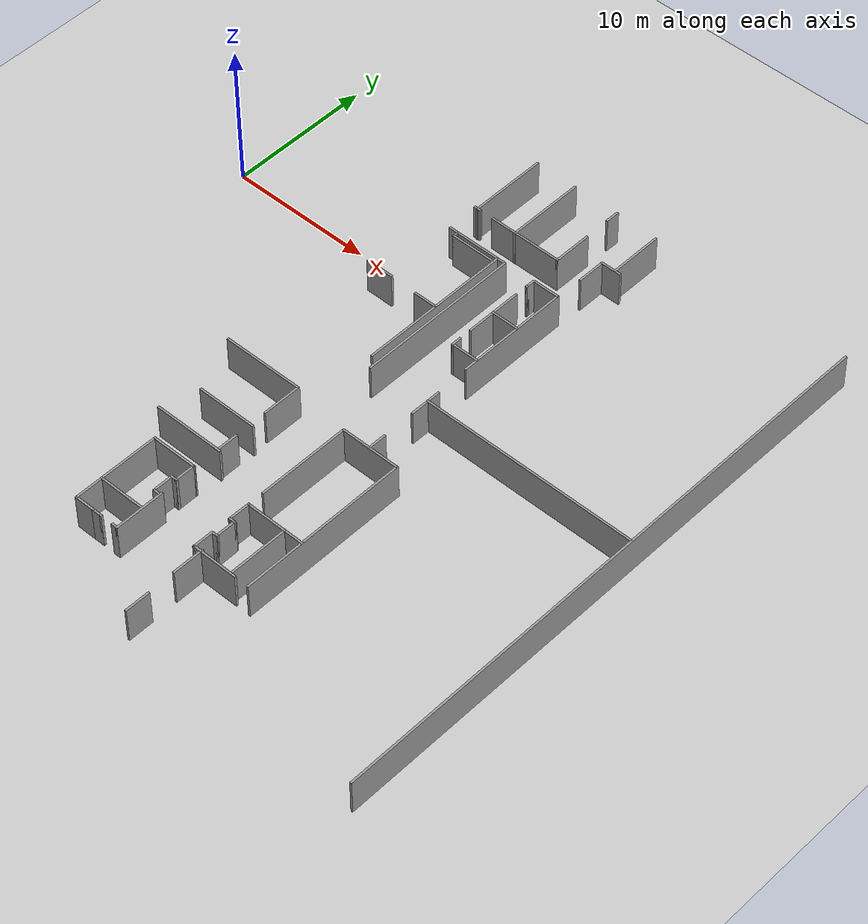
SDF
<sdf version="1.7">
 <world name="default">
  <model name="ground_plane">
   <static>1</static>
   <link name="link">
    <collision name="collision">
     <geometry><plane><normal>0 0 1</normal><size>100 100</size></plane></geometry>
     <surface>
      <contact><collide_bitmask>65535</collide_bitmask></contact>
      <friction><ode><mu>100</mu><mu2>50</mu2></ode></friction>
     </surface>
    </collision>
    <visual name="visual">
     <cast_shadows>0</cast_shadows>
     <geometry><plane><normal>0 0 1</normal><size>100 100</size></plane></geometry>
     <material>
      <script><uri>file://media/materials/scripts/gazebo.material</uri><name>Gazebo/Grey</name></script>
     </material>
    </visual>
   </link>
  </model>
  <model name="gix_2f">
   <pose>0.287504 -9.19255 0 0 -0 0</pose>
   <link name="Wall_104">
    <collision name="Wall_104_Collision">
     <geometry><box><size>5.25 0.15 2.5</size></box></geometry>
     <pose>0 0 1.25 0 -0 0</pose>
    </collision>
    <visual name="Wall_104_Visual">
     <pose>0 0 1.25 0 -0 0</pose>
     <geometry><box><size>5.25 0.15 2.5</size></box></geometry>
     <material>
      <script><uri>file://media/materials/scripts/gazebo.material</uri><name>Gazebo/Grey</name></script>
      <ambient>1 1 1 1</ambient>
     </material>
     <meta><layer>0</layer></meta>
    </visual>
    <pose>17.6956 14.9975 0 0 -0 0</pose>
   </link>
   <link name="Wall_105">
    <collision name="Wall_105_Collision">
     <geometry><box><size>2.75 0.15 2.5</size></box></geometry>
     <pose>0 0 1.25 0 -0 0</pose>
    </collision>
    <visual name="Wall_105_Visual">
     <pose>0 0 1.25 0 -0 0</pose>
     <geometry><box><size>2.75 0.15 2.5</size></box></geometry>
     <material>
      <script><uri>file://media/materials/scripts/gazebo.material</uri><name>Gazebo/Grey</name></script>
      <ambient>1 1 1 1</ambient>
     </material>
     <meta><layer>0</layer></meta>
    </visual>
    <pose>20.2456 16.2975 0 0 -0 1.5708</pose>
   </link>
   <link name="Wall_107">
    <collision name="Wall_107_Collision">
     <geometry><box><size>1 0.15 2.5</size></box></geometry>
     <pose>0 0 1.25 0 -0 0</pose>
    </collision>
    <visual name="Wall_107_Visual">
     <pose>0 0 1.25 0 -0 0</pose>
     <geometry><box><size>1 0.15 2.5</size></box></geometry>
     <material>
      <script><uri>file://media/materials/scripts/gazebo.material</uri><name>Gazebo/Grey</name></script>
      <ambient>1 1 1 1</ambient>
     </material>
     <meta><layer>0</layer></meta>
    </visual>
    <pose>20.2383 19.9081 0 0 -0 -1.5708</pose>
   </link>
   <link name="Wall_109">
    <collision name="Wall_109_Collision">
     <geometry><box><size>5.5 0.15 2.5</size></box></geometry>
     <pose>0 0 1.25 0 -0 0</pose>
    </collision>
    <visual name="Wall_109_Visual">
     <pose>0 0 1.25 0 -0 0</pose>
     <geometry><box><size>5.5 0.15 2.5</size></box></geometry>
     <material>
      <script><uri>file://media/materials/scripts/gazebo.material</uri><name>Gazebo/Grey</name></script>
      <ambient>1 1 1 1</ambient>
     </material>
     <meta><layer>0</layer></meta>
    </visual>
    <pose>16.9145 17.64 0 0 -0 -1.5708</pose>
   </link>
   <link name="Wall_113">
    <collision name="Wall_113_Collision">
     <geometry><box><size>3.75 0.15 2.5</size></box></geometry>
     <pose>0 0 1.25 0 -0 0</pose>
    </collision>
    <visual name="Wall_113_Visual">
     <pose>0 0 1.25 0 -0 0</pose>
     <geometry><box><size>3.75 0.15 2.5</size></box></geometry>
     <material>
      <script><uri>file://media/materials/scripts/gazebo.material</uri><name>Gazebo/Grey</name></script>
      <ambient>1 1 1 1</ambient>
     </material>
     <meta><layer>0</layer></meta>
    </visual>
    <pose>23.3339 18.431 0 0 -0 1.5708</pose>
   </link>
   <link name="Wall_116">
    <collision name="Wall_116_Collision">
     <geometry><box><size>1.5 0.15 2.5</size></box></geometry>
     <pose>0 0 1.25 0 -0 0</pose>
    </collision>
    <visual name="Wall_116_Visual">
     <pose>0 0 1.25 0 -0 0</pose>
     <geometry><box><size>1.5 0.15 2.5</size></box></geometry>
     <material>
      <script><uri>file://media/materials/scripts/gazebo.material</uri><name>Gazebo/Grey</name></script>
      <ambient>1 1 1 1</ambient>
     </material>
     <meta><layer>0</layer></meta>
    </visual>
    <pose>23.0121 16.5984 0 0 -0 0</pose>
   </link>
   <link name="Wall_118">
    <collision name="Wall_118_Collision">
     <geometry><box><size>2.0449 0.15 2.5</size></box></geometry>
     <pose>0 0 1.25 0 -0 0</pose>
    </collision>
    <visual name="Wall_118_Visual">
     <pose>0 0 1.25 0 -0 0</pose>
     <geometry><box><size>2.0449 0.15 2.5</size></box></geometry>
     <material>
      <script><uri>file://media/materials/scripts/gazebo.material</uri><name>Gazebo/Grey</name></script>
      <ambient>1 1 1 1</ambient>
     </material>
     <meta><layer>0</layer></meta>
    </visual>
    <pose>22.3357 15.651 0 0 -0 1.5693</pose>
   </link>
   <link name="Wall_120">
    <collision name="Wall_120_Collision">
     <geometry><box><size>0.16 0.15 2.5</size></box></geometry>
     <pose>0 0 1.25 0 -0 0</pose>
    </collision>
    <visual name="Wall_120_Visual">
     <pose>0 0 1.25 0 -0 0</pose>
     <geometry><box><size>0.16 0.15 2.5</size></box></geometry>
     <material>
      <script><uri>file://media/materials/scripts/gazebo.material</uri><name>Gazebo/Grey</name></script>
      <ambient>1 1 1 1</ambient>
     </material>
     <meta><layer>0</layer></meta>
    </visual>
    <pose>20.3829 12.1748 0 0 -0 0</pose>
   </link>
   <link name="Wall_121">
    <collision name="Wall_121_Collision">
     <geometry><box><size>0.75 0.15 2.5</size></box></geometry>
     <pose>0 0 1.25 0 -0 0</pose>
    </collision>
    <visual name="Wall_121_Visual">
     <pose>0 0 1.25 0 -0 0</pose>
     <geometry><box><size>0.75 0.15 2.5</size></box></geometry>
     <material>
      <script><uri>file://media/materials/scripts/gazebo.material</uri><name>Gazebo/Grey</name></script>
      <ambient>1 1 1 1</ambient>
     </material>
     <meta><layer>0</layer></meta>
    </visual>
    <pose>20.3879 12.4748 0 0 -0 1.5708</pose>
   </link>
   <link name="Wall_122">
    <collision name="Wall_122_Collision">
     <geometry><box><size>2 0.15 2.5</size></box></geometry>
     <pose>0 0 1.25 0 -0 0</pose>
    </collision>
    <visual name="Wall_122_Visual">
     <pose>0 0 1.25 0 -0 0</pose>
     <geometry><box><size>2 0.15 2.5</size></box></geometry>
     <material>
      <script><uri>file://media/materials/scripts/gazebo.material</uri><name>Gazebo/Grey</name></script>
      <ambient>1 1 1 1</ambient>
     </material>
     <meta><layer>0</layer></meta>
    </visual>
    <pose>21.3129 12.7748 0 0 -0 0</pose>
   </link>
   <link name="Wall_123">
    <collision name="Wall_123_Collision">
     <geometry><box><size>8 0.15 2.5</size></box></geometry>
     <pose>0 0 1.25 0 -0 0</pose>
    </collision>
    <visual name="Wall_123_Visual">
     <pose>0 0 1.25 0 -0 0</pose>
     <geometry><box><size>8 0.15 2.5</size></box></geometry>
     <material>
      <script><uri>file://media/materials/scripts/gazebo.material</uri><name>Gazebo/Grey</name></script>
      <ambient>1 1 1 1</ambient>
     </material>
     <meta><layer>0</layer></meta>
    </visual>
    <pose>22.2379 8.84977 0 0 -0 -1.5708</pose>
   </link>
   <link name="Wall_125">
    <collision name="Wall_125_Collision">
     <geometry><box><size>4 0.15 2.5</size></box></geometry>
     <pose>0 0 1.25 0 -0 0</pose>
    </collision>
    <visual name="Wall_125_Visual">
     <pose>0 0 1.25 0 -0 0</pose>
     <geometry><box><size>4 0.15 2.5</size></box></geometry>
     <material>
      <script><uri>file://media/materials/scripts/gazebo.material</uri><name>Gazebo/Grey</name></script>
      <ambient>1 1 1 1</ambient>
     </material>
     <meta><layer>0</layer></meta>
    </visual>
    <pose>20.3613 9.28577 0 0 -0 -1.5708</pose>
   </link>
   <link name="Wall_127">
    <collision name="Wall_127_Collision">
     <geometry><box><size>0.75 0.15 2.5</size></box></geometry>
     <pose>0 0 1.25 0 -0 0</pose>
    </collision>
    <visual name="Wall_127_Visual">
     <pose>0 0 1.25 0 -0 0</pose>
     <geometry><box><size>0.75 0.15 2.5</size></box></geometry>
     <material>
      <script><uri>file://media/materials/scripts/gazebo.material</uri><name>Gazebo/Grey</name></script>
      <ambient>1 1 1 1</ambient>
     </material>
     <meta><layer>0</layer></meta>
    </visual>
    <pose>20.3565 6.14583 0 0 -0 -1.5708</pose>
   </link>
   <link name="Wall_128">
    <collision name="Wall_128_Collision">
     <geometry><box><size>2 0.15 2.5</size></box></geometry>
     <pose>0 0 1.25 0 -0 0</pose>
    </collision>
    <visual name="Wall_128_Visual">
     <pose>0 0 1.25 0 -0 0</pose>
     <geometry><box><size>2 0.15 2.5</size></box></geometry>
     <material>
      <script><uri>file://media/materials/scripts/gazebo.material</uri><name>Gazebo/Grey</name></script>
      <ambient>1 1 1 1</ambient>
     </material>
     <meta><layer>0</layer></meta>
    </visual>
    <pose>21.2815 5.84583 0 0 -0 0</pose>
   </link>
   <link name="Wall_130">
    <collision name="Wall_130_Collision">
     <geometry><box><size>2 0.15 2.5</size></box></geometry>
     <pose>0 0 1.25 0 -0 0</pose>
    </collision>
    <visual name="Wall_130_Visual">
     <pose>0 0 1.25 0 -0 0</pose>
     <geometry><box><size>2 0.15 2.5</size></box></geometry>
     <material>
      <script><uri>file://media/materials/scripts/gazebo.material</uri><name>Gazebo/Grey</name></script>
      <ambient>1 1 1 1</ambient>
     </material>
     <meta><layer>0</layer></meta>
    </visual>
    <pose>21.2959 9.26453 0 0 -0 0</pose>
   </link>
   <link name="Wall_132">
    <collision name="Wall_132_Collision">
     <geometry><box><size>2.25 0.15 2.5</size></box></geometry>
     <pose>0 0 1.25 0 -0 0</pose>
    </collision>
    <visual name="Wall_132_Visual">
     <pose>0 0 1.25 0 -0 0</pose>
     <geometry><box><size>2.25 0.15 2.5</size></box></geometry>
     <material>
      <script><uri>file://media/materials/scripts/gazebo.material</uri><name>Gazebo/Grey</name></script>
      <ambient>1 1 1 1</ambient>
     </material>
     <meta><layer>0</layer></meta>
    </visual>
    <pose>22.3373 1.44229 0 0 -0 -1.5708</pose>
   </link>
   <link name="Wall_134">
    <collision name="Wall_134_Collision">
     <geometry><box><size>15.25 0.15 2.5</size></box></geometry>
     <pose>0 0 1.25 0 -0 0</pose>
    </collision>
    <visual name="Wall_134_Visual">
     <pose>0 0 1.25 0 -0 0</pose>
     <geometry><box><size>15.25 0.15 2.5</size></box></geometry>
     <material>
      <script><uri>file://media/materials/scripts/gazebo.material</uri><name>Gazebo/Grey</name></script>
      <ambient>1 1 1 1</ambient>
     </material>
     <meta><layer>0</layer></meta>
    </visual>
    <pose>29.9039 1.64609 0 0 -0 0</pose>
   </link>
   <link name="Wall_136">
    <collision name="Wall_136_Collision">
     <geometry><box><size>6.5 0.15 2.5</size></box></geometry>
     <pose>0 0 1.25 0 -0 0</pose>
    </collision>
    <visual name="Wall_136_Visual">
     <pose>0 0 1.25 0 -0 0</pose>
     <geometry><box><size>6.5 0.15 2.5</size></box></geometry>
     <material>
      <script><uri>file://media/materials/scripts/gazebo.material</uri><name>Gazebo/Grey</name></script>
      <ambient>1 1 1 1</ambient>
     </material>
     <meta><layer>0</layer></meta>
    </visual>
    <pose>20.356 -6.31962 0 0 -0 1.5708</pose>
   </link>
   <link name="Wall_137">
    <collision name="Wall_137_Collision">
     <geometry><box><size>4.25 0.15 2.5</size></box></geometry>
     <pose>0 0 1.25 0 -0 0</pose>
    </collision>
    <visual name="Wall_137_Visual">
     <pose>0 0 1.25 0 -0 0</pose>
     <geometry><box><size>4.25 0.15 2.5</size></box></geometry>
     <material>
      <script><uri>file://media/materials/scripts/gazebo.material</uri><name>Gazebo/Grey</name></script>
      <ambient>1 1 1 1</ambient>
     </material>
     <meta><layer>0</layer></meta>
    </visual>
    <pose>22.406 -3.14462 0 0 -0 0</pose>
   </link>
   <link name="Wall_138">
    <collision name="Wall_138_Collision">
     <geometry><box><size>11.75 0.15 2.5</size></box></geometry>
     <pose>0 0 1.25 0 -0 0</pose>
    </collision>
    <visual name="Wall_138_Visual">
     <pose>0 0 1.25 0 -0 0</pose>
     <geometry><box><size>11.75 0.15 2.5</size></box></geometry>
     <material>
      <script><uri>file://media/materials/scripts/gazebo.material</uri><name>Gazebo/Grey</name></script>
      <ambient>1 1 1 1</ambient>
     </material>
     <meta><layer>0</layer></meta>
    </visual>
    <pose>24.456 -8.94462 0 0 -0 -1.5708</pose>
   </link>
   <link name="Wall_140">
    <collision name="Wall_140_Collision">
     <geometry><box><size>1.25 0.15 2.5</size></box></geometry>
     <pose>0 0 1.25 0 -0 0</pose>
    </collision>
    <visual name="Wall_140_Visual">
     <pose>0 0 1.25 0 -0 0</pose>
     <geometry><box><size>1.25 0.15 2.5</size></box></geometry>
     <material>
      <script><uri>file://media/materials/scripts/gazebo.material</uri><name>Gazebo/Grey</name></script>
      <ambient>1 1 1 1</ambient>
     </material>
     <meta><layer>0</layer></meta>
    </visual>
    <pose>22.3435 -2.49513 0 0 -0 -1.5708</pose>
   </link>
   <link name="Wall_142">
    <collision name="Wall_142_Collision">
     <geometry><box><size>4.25 0.15 2.5</size></box></geometry>
     <pose>0 0 1.25 0 -0 0</pose>
    </collision>
    <visual name="Wall_142_Visual">
     <pose>0 0 1.25 0 -0 0</pose>
     <geometry><box><size>4.25 0.15 2.5</size></box></geometry>
     <material>
      <script><uri>file://media/materials/scripts/gazebo.material</uri><name>Gazebo/Grey</name></script>
      <ambient>1 1 1 1</ambient>
     </material>
     <meta><layer>0</layer></meta>
    </visual>
    <pose>22.396 -10.6333 0 0 -0 0</pose>
   </link>
   <link name="Wall_144">
    <collision name="Wall_144_Collision">
     <geometry><box><size>3.25 0.15 2.5</size></box></geometry>
     <pose>0 0 1.25 0 -0 0</pose>
    </collision>
    <visual name="Wall_144_Visual">
     <pose>0 0 1.25 0 -0 0</pose>
     <geometry><box><size>3.25 0.15 2.5</size></box></geometry>
     <material>
      <script><uri>file://media/materials/scripts/gazebo.material</uri><name>Gazebo/Grey</name></script>
      <ambient>1 1 1 1</ambient>
     </material>
     <meta><layer>0</layer></meta>
    </visual>
    <pose>21.8553 -14.7544 0 0 -0 3.14159</pose>
   </link>
   <link name="Wall_145">
    <collision name="Wall_145_Collision">
     <geometry><box><size>0.16 0.15 2.5</size></box></geometry>
     <pose>0 0 1.25 0 -0 0</pose>
    </collision>
    <visual name="Wall_145_Visual">
     <pose>0 0 1.25 0 -0 0</pose>
     <geometry><box><size>0.16 0.15 2.5</size></box></geometry>
     <material>
      <script><uri>file://media/materials/scripts/gazebo.material</uri><name>Gazebo/Grey</name></script>
      <ambient>1 1 1 1</ambient>
     </material>
     <meta><layer>0</layer></meta>
    </visual>
    <pose>20.3103 -14.7544 0 0 -0 0</pose>
   </link>
   <link name="Wall_146">
    <collision name="Wall_146_Collision">
     <geometry><box><size>1.5 0.15 2.5</size></box></geometry>
     <pose>0 0 1.25 0 -0 0</pose>
    </collision>
    <visual name="Wall_146_Visual">
     <pose>0 0 1.25 0 -0 0</pose>
     <geometry><box><size>1.5 0.15 2.5</size></box></geometry>
     <material>
      <script><uri>file://media/materials/scripts/gazebo.material</uri><name>Gazebo/Grey</name></script>
      <ambient>1 1 1 1</ambient>
     </material>
     <meta><layer>0</layer></meta>
    </visual>
    <pose>20.3153 -14.0794 0 0 -0 1.5708</pose>
   </link>
   <link name="Wall_147">
    <collision name="Wall_147_Collision">
     <geometry><box><size>0.5 0.15 2.5</size></box></geometry>
     <pose>0 0 1.25 0 -0 0</pose>
    </collision>
    <visual name="Wall_147_Visual">
     <pose>0 0 1.25 0 -0 0</pose>
     <geometry><box><size>0.5 0.15 2.5</size></box></geometry>
     <material>
      <script><uri>file://media/materials/scripts/gazebo.material</uri><name>Gazebo/Grey</name></script>
      <ambient>1 1 1 1</ambient>
     </material>
     <meta><layer>0</layer></meta>
    </visual>
    <pose>20.4903 -13.4044 0 0 -0 0</pose>
   </link>
   <link name="Wall_148">
    <collision name="Wall_148_Collision">
     <geometry><box><size>0.16 0.15 2.5</size></box></geometry>
     <pose>0 0 1.25 0 -0 0</pose>
    </collision>
    <visual name="Wall_148_Visual">
     <pose>0 0 1.25 0 -0 0</pose>
     <geometry><box><size>0.16 0.15 2.5</size></box></geometry>
     <material>
      <script><uri>file://media/materials/scripts/gazebo.material</uri><name>Gazebo/Grey</name></script>
      <ambient>1 1 1 1</ambient>
     </material>
     <meta><layer>0</layer></meta>
    </visual>
    <pose>20.6703 -13.4044 0 0 -0 0</pose>
   </link>
   <link name="Wall_149">
    <collision name="Wall_149_Collision">
     <geometry><box><size>1.5 0.15 2.5</size></box></geometry>
     <pose>0 0 1.25 0 -0 0</pose>
    </collision>
    <visual name="Wall_149_Visual">
     <pose>0 0 1.25 0 -0 0</pose>
     <geometry><box><size>1.5 0.15 2.5</size></box></geometry>
     <material>
      <script><uri>file://media/materials/scripts/gazebo.material</uri><name>Gazebo/Grey</name></script>
      <ambient>1 1 1 1</ambient>
     </material>
     <meta><layer>0</layer></meta>
    </visual>
    <pose>20.6753 -12.7294 0 0 -0 1.5708</pose>
   </link>
   <link name="Wall_150">
    <collision name="Wall_150_Collision">
     <geometry><box><size>0.5 0.15 2.5</size></box></geometry>
     <pose>0 0 1.25 0 -0 0</pose>
    </collision>
    <visual name="Wall_150_Visual">
     <pose>0 0 1.25 0 -0 0</pose>
     <geometry><box><size>0.5 0.15 2.5</size></box></geometry>
     <material>
      <script><uri>file://media/materials/scripts/gazebo.material</uri><name>Gazebo/Grey</name></script>
      <ambient>1 1 1 1</ambient>
     </material>
     <meta><layer>0</layer></meta>
    </visual>
    <pose>20.5003 -12.0544 0 0 -0 3.14159</pose>
   </link>
   <link name="Wall_151">
    <collision name="Wall_151_Collision">
     <geometry><box><size>1.57121 0.15 2.5</size></box></geometry>
     <pose>0 0 1.25 0 -0 0</pose>
    </collision>
    <visual name="Wall_151_Visual">
     <pose>0 0 1.25 0 -0 0</pose>
     <geometry><box><size>1.57121 0.15 2.5</size></box></geometry>
     <material>
      <script><uri>file://media/materials/scripts/gazebo.material</uri><name>Gazebo/Grey</name></script>
      <ambient>1 1 1 1</ambient>
     </material>
     <meta><layer>0</layer></meta>
    </visual>
    <pose>20.3357 -11.3438 0 0 -0 1.55622</pose>
   </link>
   <link name="Wall_154">
    <collision name="Wall_154_Collision">
     <geometry><box><size>4.25 0.15 2.5</size></box></geometry>
     <pose>0 0 1.25 0 -0 0</pose>
    </collision>
    <visual name="Wall_154_Visual">
     <pose>0 0 1.25 0 -0 0</pose>
     <geometry><box><size>4.25 0.15 2.5</size></box></geometry>
     <material>
      <script><uri>file://media/materials/scripts/gazebo.material</uri><name>Gazebo/Grey</name></script>
      <ambient>1 1 1 1</ambient>
     </material>
     <meta><layer>0</layer></meta>
    </visual>
    <pose>23.129 -12.6736 0 0 -0 -1.5708</pose>
   </link>
   <link name="Wall_156">
    <collision name="Wall_156_Collision">
     <geometry><box><size>2.25 0.15 2.5</size></box></geometry>
     <pose>0 0 1.25 0 -0 0</pose>
    </collision>
    <visual name="Wall_156_Visual">
     <pose>0 0 1.25 0 -0 0</pose>
     <geometry><box><size>2.25 0.15 2.5</size></box></geometry>
     <material>
      <script><uri>file://media/materials/scripts/gazebo.material</uri><name>Gazebo/Grey</name></script>
      <ambient>1 1 1 1</ambient>
     </material>
     <meta><layer>0</layer></meta>
    </visual>
    <pose>20.826 -15.7164 0 0 -0 1.5708</pose>
   </link>
   <link name="Wall_158">
    <collision name="Wall_158_Collision">
     <geometry><box><size>1.75 0.15 2.5</size></box></geometry>
     <pose>0 0 1.25 0 -0 0</pose>
    </collision>
    <visual name="Wall_158_Visual">
     <pose>0 0 1.25 0 -0 0</pose>
     <geometry><box><size>1.75 0.15 2.5</size></box></geometry>
     <material>
      <script><uri>file://media/materials/scripts/gazebo.material</uri><name>Gazebo/Grey</name></script>
      <ambient>1 1 1 1</ambient>
     </material>
     <meta><layer>0</layer></meta>
    </visual>
    <pose>20.8495 -19.5331 0 0 -0 -1.5708</pose>
   </link>
   <link name="Wall_168">
    <collision name="Wall_168_Collision">
     <geometry><box><size>5.75 0.15 2.5</size></box></geometry>
     <pose>0 0 1.25 0 -0 0</pose>
    </collision>
    <visual name="Wall_168_Visual">
     <pose>0 0 1.25 0 -0 0</pose>
     <geometry><box><size>5.75 0.15 2.5</size></box></geometry>
     <material>
      <script><uri>file://media/materials/scripts/gazebo.material</uri><name>Gazebo/Grey</name></script>
      <ambient>1 1 1 1</ambient>
     </material>
     <meta><layer>0</layer></meta>
    </visual>
    <pose>13.4074 -2.59567 0 0 -0 0</pose>
   </link>
   <link name="Wall_169">
    <collision name="Wall_169_Collision">
     <geometry><box><size>2.75 0.15 2.5</size></box></geometry>
     <pose>0 0 1.25 0 -0 0</pose>
    </collision>
    <visual name="Wall_169_Visual">
     <pose>0 0 1.25 0 -0 0</pose>
     <geometry><box><size>2.75 0.15 2.5</size></box></geometry>
     <material>
      <script><uri>file://media/materials/scripts/gazebo.material</uri><name>Gazebo/Grey</name></script>
      <ambient>1 1 1 1</ambient>
     </material>
     <meta><layer>0</layer></meta>
    </visual>
    <pose>16.2074 -3.89568 0 0 -0 -1.5708</pose>
   </link>
   <link name="Wall_171">
    <collision name="Wall_171_Collision">
     <geometry><box><size>1.5 0.15 2.5</size></box></geometry>
     <pose>0 0 1.25 0 -0 0</pose>
    </collision>
    <visual name="Wall_171_Visual">
     <pose>0 0 1.25 0 -0 0</pose>
     <geometry><box><size>1.5 0.15 2.5</size></box></geometry>
     <material>
      <script><uri>file://media/materials/scripts/gazebo.material</uri><name>Gazebo/Grey</name></script>
      <ambient>1 1 1 1</ambient>
     </material>
     <meta><layer>0</layer></meta>
    </visual>
    <pose>16.2286 -8.22332 0 0 -0 -1.5708</pose>
   </link>
   <link name="Wall_176">
    <collision name="Wall_176_Collision">
     <geometry><box><size>5 0.15 2.5</size></box></geometry>
     <pose>0 0 1.25 0 -0 0</pose>
    </collision>
    <visual name="Wall_176_Visual">
     <pose>0 0 1.25 0 -0 0</pose>
     <geometry><box><size>5 0.15 2.5</size></box></geometry>
     <material>
      <script><uri>file://media/materials/scripts/gazebo.material</uri><name>Gazebo/Grey</name></script>
      <ambient>1 1 1 1</ambient>
     </material>
     <meta><layer>0</layer></meta>
    </visual>
    <pose>13.9309 -8.97341 0 0 -0 0</pose>
   </link>
   <link name="Wall_178">
    <collision name="Wall_178_Collision">
     <geometry><box><size>4.25 0.15 2.5</size></box></geometry>
     <pose>0 0 1.25 0 -0 0</pose>
    </collision>
    <visual name="Wall_178_Visual">
     <pose>0 0 1.25 0 -0 0</pose>
     <geometry><box><size>4.25 0.15 2.5</size></box></geometry>
     <material>
      <script><uri>file://media/materials/scripts/gazebo.material</uri><name>Gazebo/Grey</name></script>
      <ambient>1 1 1 1</ambient>
     </material>
     <meta><layer>0</layer></meta>
    </visual>
    <pose>14.3197 -6.39481 0 0 -0 0</pose>
   </link>
   <link name="Wall_20">
    <collision name="Wall_20_Collision">
     <geometry><box><size>40.75 0.15 2.5</size></box></geometry>
     <pose>0 0 1.25 0 -0 0</pose>
    </collision>
    <visual name="Wall_20_Visual">
     <pose>0 0 1.25 0 -0 0</pose>
     <geometry><box><size>40.75 0.15 2.5</size></box></geometry>
     <material>
      <script><uri>file://media/materials/scripts/gazebo.material</uri><name>Gazebo/Grey</name></script>
      <ambient>1 1 1 1</ambient>
     </material>
     <meta><layer>0</layer></meta>
    </visual>
    <pose>37.55 0.010736 0 0 -0 -1.5708</pose>
   </link>
   <link name="Wall_221">
    <collision name="Wall_221_Collision">
     <geometry><box><size>3.25 0.15 2.5</size></box></geometry>
     <pose>0 0 1.25 0 -0 0</pose>
    </collision>
    <visual name="Wall_221_Visual">
     <pose>0 0 1.25 0 -0 0</pose>
     <geometry><box><size>3.25 0.15 2.5</size></box></geometry>
     <material>
      <script><uri>file://media/materials/scripts/gazebo.material</uri><name>Gazebo/Grey</name></script>
      <ambient>1 1 1 1</ambient>
     </material>
     <meta><layer>0</layer></meta>
    </visual>
    <pose>14.5698 -10.7418 0 0 -0 0</pose>
   </link>
   <link name="Wall_222">
    <collision name="Wall_222_Collision">
     <geometry><box><size>1.5 0.15 2.5</size></box></geometry>
     <pose>0 0 1.25 0 -0 0</pose>
    </collision>
    <visual name="Wall_222_Visual">
     <pose>0 0 1.25 0 -0 0</pose>
     <geometry><box><size>1.5 0.15 2.5</size></box></geometry>
     <material>
      <script><uri>file://media/materials/scripts/gazebo.material</uri><name>Gazebo/Grey</name></script>
      <ambient>1 1 1 1</ambient>
     </material>
     <meta><layer>0</layer></meta>
    </visual>
    <pose>16.1198 -11.4168 0 0 -0 -1.5708</pose>
   </link>
   <link name="Wall_223">
    <collision name="Wall_223_Collision">
     <geometry><box><size>0.16 0.15 2.5</size></box></geometry>
     <pose>0 0 1.25 0 -0 0</pose>
    </collision>
    <visual name="Wall_223_Visual">
     <pose>0 0 1.25 0 -0 0</pose>
     <geometry><box><size>0.16 0.15 2.5</size></box></geometry>
     <material>
      <script><uri>file://media/materials/scripts/gazebo.material</uri><name>Gazebo/Grey</name></script>
      <ambient>1 1 1 1</ambient>
     </material>
     <meta><layer>0</layer></meta>
    </visual>
    <pose>16.1248 -12.0918 0 0 -0 0</pose>
   </link>
   <link name="Wall_224">
    <collision name="Wall_224_Collision">
     <geometry><box><size>0.5 0.15 2.5</size></box></geometry>
     <pose>0 0 1.25 0 -0 0</pose>
    </collision>
    <visual name="Wall_224_Visual">
     <pose>0 0 1.25 0 -0 0</pose>
     <geometry><box><size>0.5 0.15 2.5</size></box></geometry>
     <material>
      <script><uri>file://media/materials/scripts/gazebo.material</uri><name>Gazebo/Grey</name></script>
      <ambient>1 1 1 1</ambient>
     </material>
     <meta><layer>0</layer></meta>
    </visual>
    <pose>15.9548 -12.0918 0 0 -0 3.14159</pose>
   </link>
   <link name="Wall_225">
    <collision name="Wall_225_Collision">
     <geometry><box><size>1.5 0.15 2.5</size></box></geometry>
     <pose>0 0 1.25 0 -0 0</pose>
    </collision>
    <visual name="Wall_225_Visual">
     <pose>0 0 1.25 0 -0 0</pose>
     <geometry><box><size>1.5 0.15 2.5</size></box></geometry>
     <material>
      <script><uri>file://media/materials/scripts/gazebo.material</uri><name>Gazebo/Grey</name></script>
      <ambient>1 1 1 1</ambient>
     </material>
     <meta><layer>0</layer></meta>
    </visual>
    <pose>15.7798 -12.7668 0 0 -0 -1.5708</pose>
   </link>
   <link name="Wall_226">
    <collision name="Wall_226_Collision">
     <geometry><box><size>0.5 0.15 2.5</size></box></geometry>
     <pose>0 0 1.25 0 -0 0</pose>
    </collision>
    <visual name="Wall_226_Visual">
     <pose>0 0 1.25 0 -0 0</pose>
     <geometry><box><size>0.5 0.15 2.5</size></box></geometry>
     <material>
      <script><uri>file://media/materials/scripts/gazebo.material</uri><name>Gazebo/Grey</name></script>
      <ambient>1 1 1 1</ambient>
     </material>
     <meta><layer>0</layer></meta>
    </visual>
    <pose>15.9548 -13.4418 0 0 -0 0</pose>
   </link>
   <link name="Wall_228">
    <collision name="Wall_228_Collision">
     <geometry><box><size>6 0.15 2.5</size></box></geometry>
     <pose>0 0 1.25 0 -0 0</pose>
    </collision>
    <visual name="Wall_228_Visual">
     <pose>0 0 1.25 0 -0 0</pose>
     <geometry><box><size>6 0.15 2.5</size></box></geometry>
     <material>
      <script><uri>file://media/materials/scripts/gazebo.material</uri><name>Gazebo/Grey</name></script>
      <ambient>1 1 1 1</ambient>
     </material>
     <meta><layer>0</layer></meta>
    </visual>
    <pose>13.0198 -13.6668 0 0 -0 -1.5708</pose>
   </link>
   <link name="Wall_230">
    <collision name="Wall_230_Collision">
     <geometry><box><size>1.5 0.15 2.5</size></box></geometry>
     <pose>0 0 1.25 0 -0 0</pose>
    </collision>
    <visual name="Wall_230_Visual">
     <pose>0 0 1.25 0 -0 0</pose>
     <geometry><box><size>1.5 0.15 2.5</size></box></geometry>
     <material>
      <script><uri>file://media/materials/scripts/gazebo.material</uri><name>Gazebo/Grey</name></script>
      <ambient>1 1 1 1</ambient>
     </material>
     <meta><layer>0</layer></meta>
    </visual>
    <pose>13.7001 -16.688 0 0 -0 3.14159</pose>
   </link>
   <link name="Wall_232">
    <collision name="Wall_232_Collision">
     <geometry><box><size>0.75 0.15 2.5</size></box></geometry>
     <pose>0 0 1.25 0 -0 0</pose>
    </collision>
    <visual name="Wall_232_Visual">
     <pose>0 0 1.25 0 -0 0</pose>
     <geometry><box><size>0.75 0.15 2.5</size></box></geometry>
     <material>
      <script><uri>file://media/materials/scripts/gazebo.material</uri><name>Gazebo/Grey</name></script>
      <ambient>1 1 1 1</ambient>
     </material>
     <meta><layer>0</layer></meta>
    </visual>
    <pose>14.6751 -16.688 0 0 -0 0</pose>
   </link>
   <link name="Wall_233">
    <collision name="Wall_233_Collision">
     <geometry><box><size>0.16 0.15 2.5</size></box></geometry>
     <pose>0 0 1.25 0 -0 0</pose>
    </collision>
    <visual name="Wall_233_Visual">
     <pose>0 0 1.25 0 -0 0</pose>
     <geometry><box><size>0.16 0.15 2.5</size></box></geometry>
     <material>
      <script><uri>file://media/materials/scripts/gazebo.material</uri><name>Gazebo/Grey</name></script>
      <ambient>1 1 1 1</ambient>
     </material>
     <meta><layer>0</layer></meta>
    </visual>
    <pose>14.9801 -16.688 0 0 -0 0</pose>
   </link>
   <link name="Wall_236">
    <collision name="Wall_236_Collision">
     <geometry><box><size>0.5 0.15 2.5</size></box></geometry>
     <pose>0 0 1.25 0 -0 0</pose>
    </collision>
    <visual name="Wall_236_Visual">
     <pose>0 0 1.25 0 -0 0</pose>
     <geometry><box><size>0.5 0.15 2.5</size></box></geometry>
     <material>
      <script><uri>file://media/materials/scripts/gazebo.material</uri><name>Gazebo/Grey</name></script>
      <ambient>1 1 1 1</ambient>
     </material>
     <meta><layer>0</layer></meta>
    </visual>
    <pose>16.0794 -16.6851 0 0 -0 0</pose>
   </link>
   <link name="Wall_237">
    <collision name="Wall_237_Collision">
     <geometry><box><size>3.5 0.15 2.5</size></box></geometry>
     <pose>0 0 1.25 0 -0 0</pose>
    </collision>
    <visual name="Wall_237_Visual">
     <pose>0 0 1.25 0 -0 0</pose>
     <geometry><box><size>3.5 0.15 2.5</size></box></geometry>
     <material>
      <script><uri>file://media/materials/scripts/gazebo.material</uri><name>Gazebo/Grey</name></script>
      <ambient>1 1 1 1</ambient>
     </material>
     <meta><layer>0</layer></meta>
    </visual>
    <pose>16.2544 -15.0101 0 0 -0 1.5708</pose>
   </link>
   <link name="Wall_239">
    <collision name="Wall_239_Collision">
     <geometry><box><size>3.25 0.15 2.5</size></box></geometry>
     <pose>0 0 1.25 0 -0 0</pose>
    </collision>
    <visual name="Wall_239_Visual">
     <pose>0 0 1.25 0 -0 0</pose>
     <geometry><box><size>3.25 0.15 2.5</size></box></geometry>
     <material>
      <script><uri>file://media/materials/scripts/gazebo.material</uri><name>Gazebo/Grey</name></script>
      <ambient>1 1 1 1</ambient>
     </material>
     <meta><layer>0</layer></meta>
    </visual>
    <pose>14.5606 -14.7863 0 0 -0 0</pose>
   </link>
   <link name="Wall_268">
    <collision name="Wall_268_Collision">
     <geometry><box><size>0.75 0.15 2.5</size></box></geometry>
     <pose>0 0 1.25 0 -0 0</pose>
    </collision>
    <visual name="Wall_268_Visual">
     <pose>0 0 1.25 0 -0 0</pose>
     <geometry><box><size>0.75 0.15 2.5</size></box></geometry>
     <material>
      <script><uri>file://media/materials/scripts/gazebo.material</uri><name>Gazebo/Grey</name></script>
      <ambient>1 1 1 1</ambient>
     </material>
     <meta><layer>0</layer></meta>
    </visual>
    <pose>14.1022 12.7053 0 0 -0 0</pose>
   </link>
   <link name="Wall_269">
    <collision name="Wall_269_Collision">
     <geometry><box><size>0.5 0.15 2.5</size></box></geometry>
     <pose>0 0 1.25 0 -0 0</pose>
    </collision>
    <visual name="Wall_269_Visual">
     <pose>0 0 1.25 0 -0 0</pose>
     <geometry><box><size>0.5 0.15 2.5</size></box></geometry>
     <material>
      <script><uri>file://media/materials/scripts/gazebo.material</uri><name>Gazebo/Grey</name></script>
      <ambient>1 1 1 1</ambient>
     </material>
     <meta><layer>0</layer></meta>
    </visual>
    <pose>14.4022 12.5303 0 0 -0 -1.5708</pose>
   </link>
   <link name="Wall_270">
    <collision name="Wall_270_Collision">
     <geometry><box><size>3.25 0.15 2.5</size></box></geometry>
     <pose>0 0 1.25 0 -0 0</pose>
    </collision>
    <visual name="Wall_270_Visual">
     <pose>0 0 1.25 0 -0 0</pose>
     <geometry><box><size>3.25 0.15 2.5</size></box></geometry>
     <material>
      <script><uri>file://media/materials/scripts/gazebo.material</uri><name>Gazebo/Grey</name></script>
      <ambient>1 1 1 1</ambient>
     </material>
     <meta><layer>0</layer></meta>
    </visual>
    <pose>15.9522 12.3553 0 0 -0 0</pose>
   </link>
   <link name="Wall_274">
    <collision name="Wall_274_Collision">
     <geometry><box><size>0.5 0.15 2.5</size></box></geometry>
     <pose>0 0 1.25 0 -0 0</pose>
    </collision>
    <visual name="Wall_274_Visual">
     <pose>0 0 1.25 0 -0 0</pose>
     <geometry><box><size>0.5 0.15 2.5</size></box></geometry>
     <material>
      <script><uri>file://media/materials/scripts/gazebo.material</uri><name>Gazebo/Grey</name></script>
      <ambient>1 1 1 1</ambient>
     </material>
     <meta><layer>0</layer></meta>
    </visual>
    <pose>17.8392 12.7004 0 0 -0 3.14159</pose>
   </link>
   <link name="Wall_281">
    <collision name="Wall_281_Collision">
     <geometry><box><size>10.75 0.15 2.5</size></box></geometry>
     <pose>0 0 1.25 0 -0 0</pose>
    </collision>
    <visual name="Wall_281_Visual">
     <pose>0 0 1.25 0 -0 0</pose>
     <geometry><box><size>10.75 0.15 2.5</size></box></geometry>
     <material>
      <script><uri>file://media/materials/scripts/gazebo.material</uri><name>Gazebo/Grey</name></script>
      <ambient>1 1 1 1</ambient>
     </material>
     <meta><layer>0</layer></meta>
    </visual>
    <pose>17.5799 7.37587 0 0 -0 1.5708</pose>
   </link>
   <link name="Wall_289">
    <collision name="Wall_289_Collision">
     <geometry><box><size>2 0.15 2.5</size></box></geometry>
     <pose>0 0 1.25 0 -0 0</pose>
    </collision>
    <visual name="Wall_289_Visual">
     <pose>0 0 1.25 0 -0 0</pose>
     <geometry><box><size>2 0.15 2.5</size></box></geometry>
     <material>
      <script><uri>file://media/materials/scripts/gazebo.material</uri><name>Gazebo/Grey</name></script>
      <ambient>1 1 1 1</ambient>
     </material>
     <meta><layer>0</layer></meta>
    </visual>
    <pose>13.0478 7.43281 0 0 -0 0</pose>
   </link>
   <link name="Wall_291">
    <collision name="Wall_291_Collision">
     <geometry><box><size>1.75 0.15 2.5</size></box></geometry>
     <pose>0 0 1.25 0 -0 0</pose>
    </collision>
    <visual name="Wall_291_Visual">
     <pose>0 0 1.25 0 -0 0</pose>
     <geometry><box><size>1.75 0.15 2.5</size></box></geometry>
     <material>
      <script><uri>file://media/materials/scripts/gazebo.material</uri><name>Gazebo/Grey</name></script>
      <ambient>1 1 1 1</ambient>
     </material>
     <meta><layer>0</layer></meta>
    </visual>
    <pose>16.7696 7.36131 0 0 -0 0</pose>
   </link>
   <link name="Wall_296">
    <collision name="Wall_296_Collision">
     <geometry><box><size>11.5 0.15 2.5</size></box></geometry>
     <pose>0 0 1.25 0 -0 0</pose>
    </collision>
    <visual name="Wall_296_Visual">
     <pose>0 0 1.25 0 -0 0</pose>
     <geometry><box><size>11.5 0.15 2.5</size></box></geometry>
     <material>
      <script><uri>file://media/materials/scripts/gazebo.material</uri><name>Gazebo/Grey</name></script>
      <ambient>1 1 1 1</ambient>
     </material>
     <meta><layer>0</layer></meta>
    </visual>
    <pose>18.1555 7.00569 0 0 -0 1.5708</pose>
   </link>
   <link name="Wall_302">
    <collision name="Wall_302_Collision">
     <geometry><box><size>3.25 0.15 2.5</size></box></geometry>
     <pose>0 0 1.25 0 -0 0</pose>
    </collision>
    <visual name="Wall_302_Visual">
     <pose>0 0 1.25 0 -0 0</pose>
     <geometry><box><size>3.25 0.15 2.5</size></box></geometry>
     <material>
      <script><uri>file://media/materials/scripts/gazebo.material</uri><name>Gazebo/Grey</name></script>
      <ambient>1 1 1 1</ambient>
     </material>
     <meta><layer>0</layer></meta>
    </visual>
    <pose>15.9522 12.7053 0 0 -0 0</pose>
   </link>
   <link name="Wall_95">
    <collision name="Wall_95_Collision">
     <geometry><box><size>0.5 0.15 2.5</size></box></geometry>
     <pose>0 0 1.25 0 -0 0</pose>
    </collision>
    <visual name="Wall_95_Visual">
     <pose>0 0 1.25 0 -0 0</pose>
     <geometry><box><size>0.5 0.15 2.5</size></box></geometry>
     <material>
      <script><uri>file://media/materials/scripts/gazebo.material</uri><name>Gazebo/Grey</name></script>
      <ambient>1 1 1 1</ambient>
     </material>
     <meta><layer>0</layer></meta>
    </visual>
    <pose>13.8786 15.0028 0 0 -0 0</pose>
   </link>
   <link name="Wall_98">
    <collision name="Wall_98_Collision">
     <geometry><box><size>5.5 0.15 2.5</size></box></geometry>
     <pose>0 0 1.25 0 -0 0</pose>
    </collision>
    <visual name="Wall_98_Visual">
     <pose>0 0 1.25 0 -0 0</pose>
     <geometry><box><size>5.5 0.15 2.5</size></box></geometry>
     <material>
      <script><uri>file://media/materials/scripts/gazebo.material</uri><name>Gazebo/Grey</name></script>
      <ambient>1 1 1 1</ambient>
     </material>
     <meta><layer>0</layer></meta>
    </visual>
    <pose>13.885 17.6357 0 0 -0 -1.5708</pose>
   </link>
   <static>1</static>
  </model>
 </world>
</sdf>
